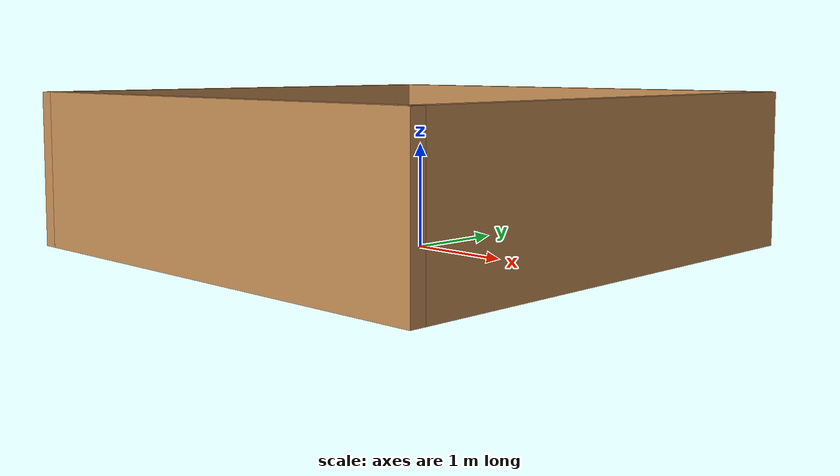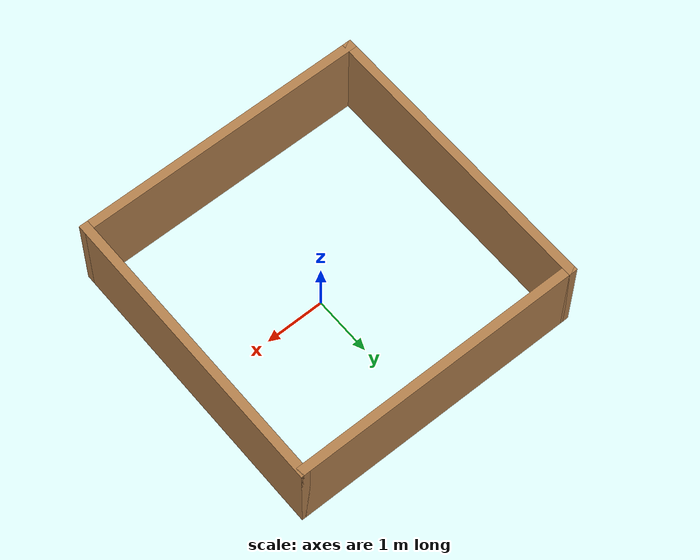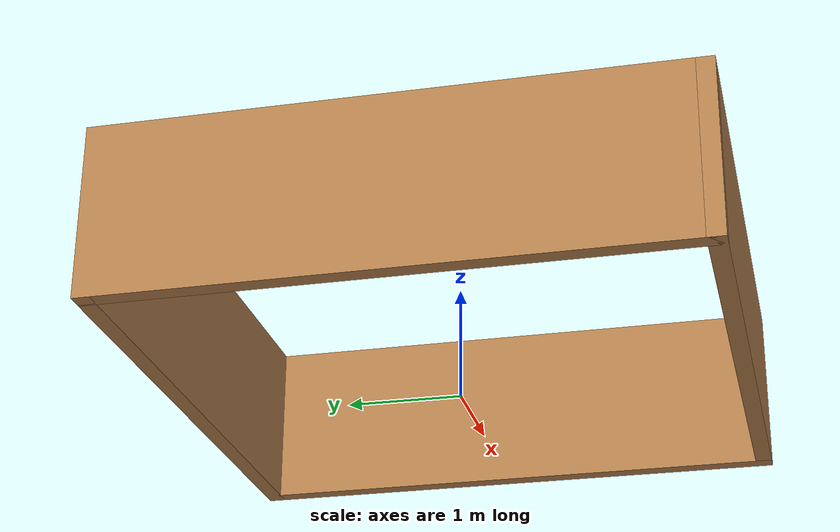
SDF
<?xml version='1.0'?>
<sdf version='1.6'>
  <model name='empty_box'>
    <pose frame=''>-0.127 -0.021 0 0 -0 0</pose>
    <link name='Wall_0'>
      <collision name='Wall_0_Collision'>
        <geometry>
          <box>
            <size>5 0.15 1.5</size>
          </box>
        </geometry>
        <pose frame=''>0 0 0.75 0 -0 0</pose>
      </collision>
      <visual name='Wall_0_Visual'>
        <pose frame=''>0 0 0.75 0 -0 0</pose>
        <geometry>
          <box>
            <size>5 0.15 1.5</size>
          </box>
        </geometry>
        <material>
          <script>
            <uri>file://media/materials/scripts/gazebo.material</uri>
            <name>Gazebo/Wood</name>
          </script>
          <ambient>1 1 1 1</ambient>
        </material>
        <meta>
          <layer>0</layer>
        </meta>
      </visual>
      <pose frame=''>-0 2.425 0 0 -0 0</pose>
    </link>
    <link name='Wall_3'>
      <collision name='Wall_3_Collision'>
        <geometry>
          <box>
            <size>5 0.15 1.5</size>
          </box>
        </geometry>
        <pose frame=''>0 0 0.75 0 -0 0</pose>
      </collision>
      <visual name='Wall_3_Visual'>
        <pose frame=''>0 0 0.75 0 -0 0</pose>
        <geometry>
          <box>
            <size>5 0.15 1.5</size>
          </box>
        </geometry>
        <material>
          <script>
            <uri>file://media/materials/scripts/gazebo.material</uri>
            <name>Gazebo/Wood</name>
          </script>
          <ambient>1 1 1 1</ambient>
        </material>
        <meta>
          <layer>0</layer>
        </meta>
      </visual>
      <pose frame=''>2.425 -0 0 0 -0 -1.5708</pose>
    </link>
    <link name='Wall_4'>
      <collision name='Wall_4_Collision'>
        <geometry>
          <box>
            <size>5 0.15 1.5</size>
          </box>
        </geometry>
        <pose frame=''>0 0 0.75 0 -0 0</pose>
      </collision>
      <visual name='Wall_4_Visual'>
        <pose frame=''>0 0 0.75 0 -0 0</pose>
        <geometry>
          <box>
            <size>5 0.15 1.5</size>
          </box>
        </geometry>
        <material>
          <script>
            <uri>file://media/materials/scripts/gazebo.material</uri>
            <name>Gazebo/Wood</name>
          </script>
          <ambient>1 1 1 1</ambient>
        </material>
        <meta>
          <layer>0</layer>
        </meta>
      </visual>
      <pose frame=''>-0 -2.425 0 0 -0 3.14159</pose>
    </link>
    <link name='Wall_5'>
      <collision name='Wall_5_Collision'>
        <geometry>
          <box>
            <size>5 0.15 1.5</size>
          </box>
        </geometry>
        <pose frame=''>0 0 0.75 0 -0 0</pose>
      </collision>
      <visual name='Wall_5_Visual'>
        <pose frame=''>0 0 0.75 0 -0 0</pose>
        <geometry>
          <box>
            <size>5 0.15 1.5</size>
          </box>
        </geometry>
        <material>
          <script>
            <uri>file://media/materials/scripts/gazebo.material</uri>
            <name>Gazebo/Wood</name>
          </script>
          <ambient>1 1 1 1</ambient>
        </material>
        <meta>
          <layer>0</layer>
        </meta>
      </visual>
      <pose frame=''>-2.425 -0 0 0 -0 1.5708</pose>
    </link>
    <static>1</static>
  </model>
</sdf>
